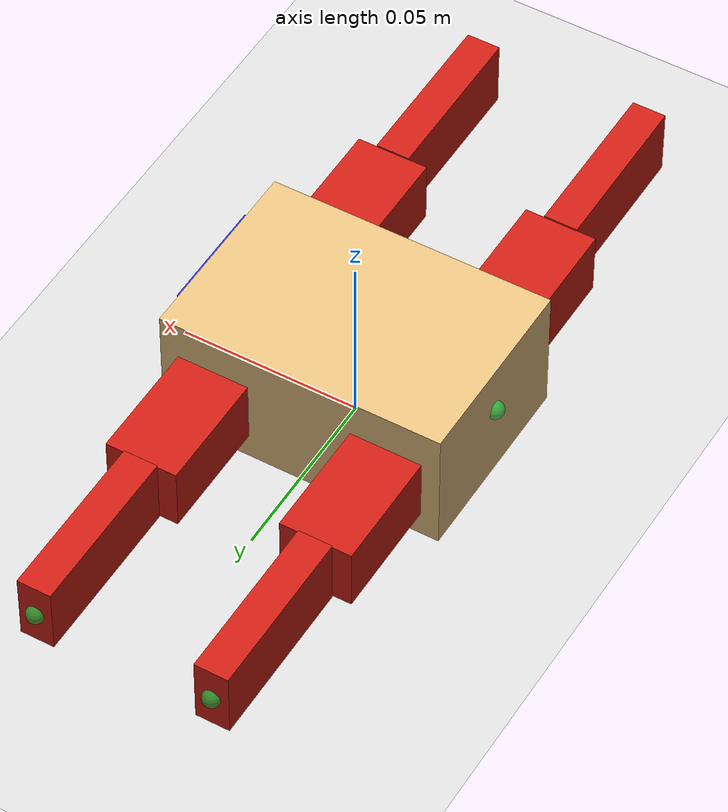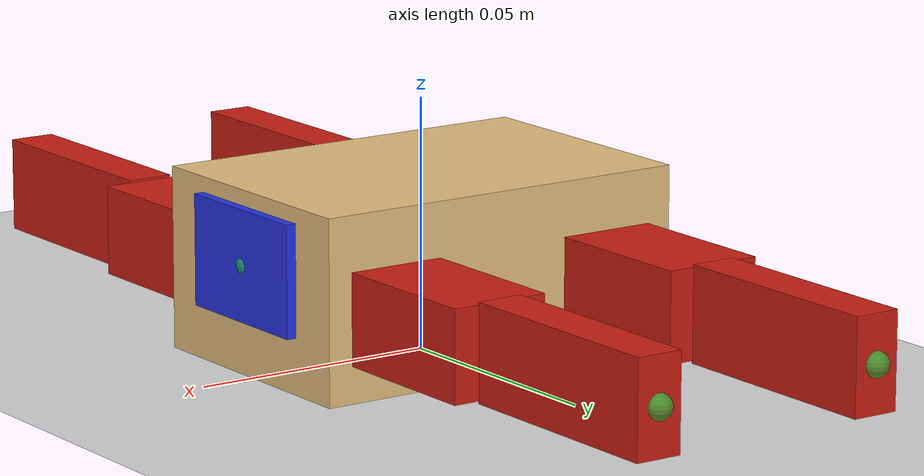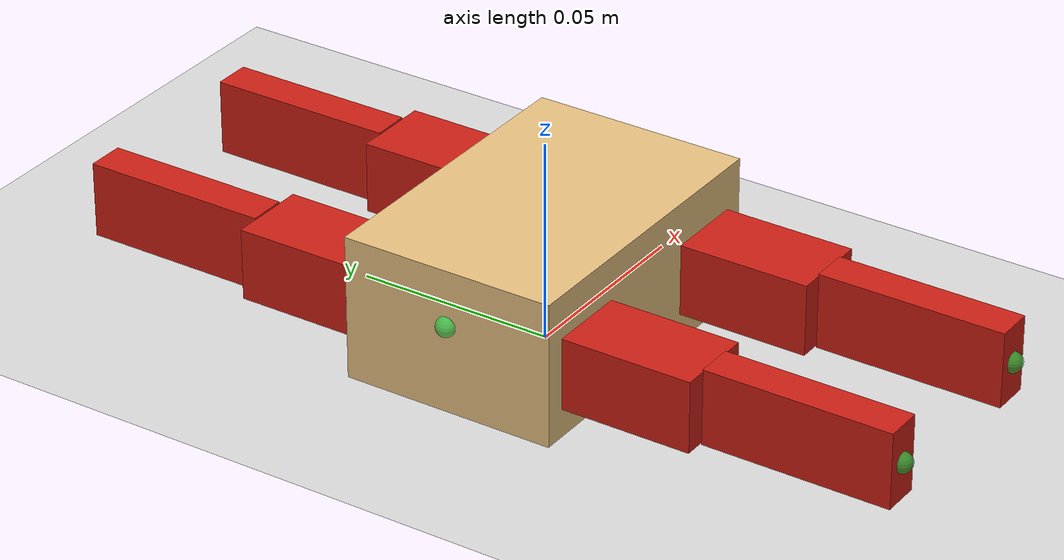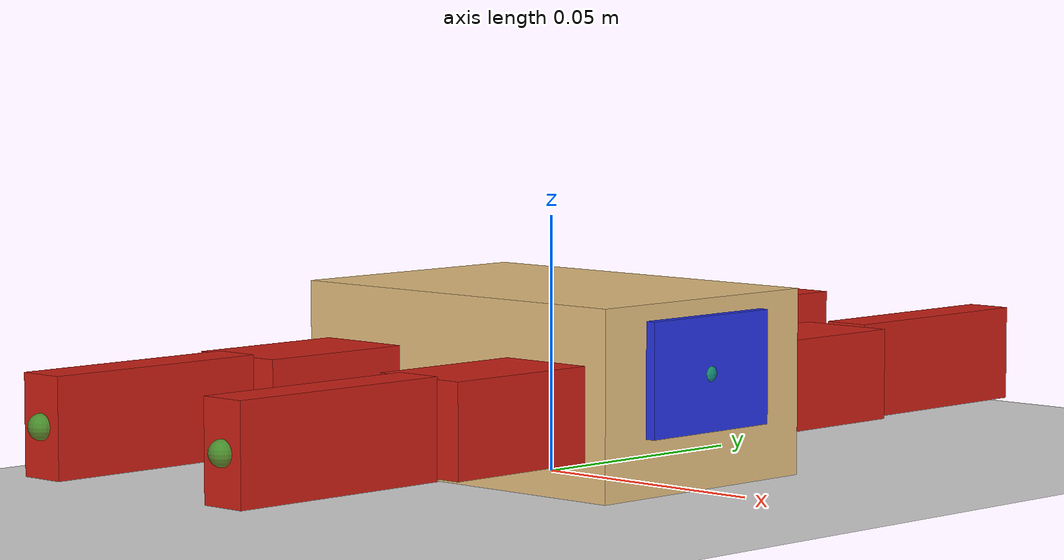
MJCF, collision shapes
<?xml version="1.0" encoding="utf-8"?>
<!-- GENERATED from manifest/robot.yaml by sim/build_mjcf.py — do not edit by hand.
     Kinematics/dimensions measured from upstream v117/v121 STLs; masses estimated. -->
<mujoco model="sesame">
  <option timestep="0.002"/>
  <compiler angle="radian" autolimits="true" meshdir="../assets/mesh"/>
  <default>
    <geom friction="0.9 0.005 0.0001" condim="3"/>
    <site size="0.0025" rgba="0.1 0.9 0.3 0.6"/>
  </default>
  <asset>
    <mesh name="torso_frame" file="torso_frame.stl"/>
    <mesh name="torso_bottom" file="torso_bottom.stl"/>
    <mesh name="torso_top" file="torso_top.stl"/>
    <mesh name="front_left_upper" file="front_left_upper.stl"/>
    <mesh name="front_left_lower" file="front_left_lower.stl"/>
    <mesh name="front_right_upper" file="front_right_upper.stl"/>
    <mesh name="front_right_lower" file="front_right_lower.stl"/>
    <mesh name="back_left_upper" file="back_left_upper.stl"/>
    <mesh name="back_left_lower" file="back_left_lower.stl"/>
    <mesh name="back_right_upper" file="back_right_upper.stl"/>
    <mesh name="back_right_lower" file="back_right_lower.stl"/>
  </asset>
  <worldbody>
    <light pos="0 0 1.5" dir="0 0 -1"/>
    <geom name="floor" type="plane" size="2 2 0.05" rgba="0.85 0.85 0.85 1"/>
    <body name="torso" pos="0 0 0.0185">
      <freejoint name="root"/>
      <geom name="torso_geom" type="box" size="0.0396 0.0271 0.0181"
            mass="0.19" group="3" rgba="0.9 0.75 0.5 1"/>
      <geom name="torso_frame_visual" type="mesh" mesh="torso_frame" mass="0"
            group="2" contype="0" conaffinity="0" rgba="0.92 0.88 0.80 1"/>
      <geom name="torso_bottom_visual" type="mesh" mesh="torso_bottom" mass="0"
            group="2" contype="0" conaffinity="0" rgba="0.92 0.88 0.80 1"/>
      <geom name="torso_top_visual" type="mesh" mesh="torso_top" mass="0"
            group="2" contype="0" conaffinity="0" rgba="0.92 0.88 0.80 1"/>
      <geom name="face_geom" type="box" size="0.002 0.016 0.011"
            pos="0.0396 0 0.004" mass="0.001"
            contype="0" conaffinity="0" rgba="0.15 0.2 0.9 1"/>
      <site name="torso_center" pos="0 0 0"/>
      <site name="face" pos="0.0396 0 0.004"/>
      <site name="rear" pos="-0.0396 0 0.004"/>
      <body name="front_right_upper" pos="0.0245 -0.0230 -0.0018">
        <joint name="R1" type="hinge" axis="0 0 1"
               range="-0.785398 1.570796" damping="0.01"/>
        <site name="front_right_hip" pos="0 0 0"/>
        <geom name="front_right_upper_geom" type="box" mass="0.019" group="3"
              pos="0 -0.0185 0"
              size="0.01 0.0185 0.009" rgba="0.80 0.12 0.08 1"/>
        <geom name="front_right_upper_visual" type="mesh" mesh="front_right_upper"
              mass="0" group="2" contype="0" conaffinity="0" rgba="0.80 0.12 0.08 1"/>
        <body name="front_right_lower" pos="0 -0.0369 0">
          <joint name="R3" type="hinge" axis="1 0 0"
                 range="-1.570796 1.570796" damping="0.01"/>
          <site name="front_right_knee" pos="0 0 0"/>
          <site name="front_right_paw" pos="0 -0.0470 0"/>
          <geom name="front_right_lower_geom" type="box" mass="0.005" group="3"
                pos="0 -0.0235 0"
                size="0.0047 0.0235 0.0095" rgba="0.80 0.12 0.08 1"/>
          <geom name="front_right_lower_visual" type="mesh" mesh="front_right_lower"
                mass="0" group="2" contype="0" conaffinity="0" rgba="0.80 0.12 0.08 1"/>
        </body>
      </body>
      <body name="back_right_upper" pos="-0.0245 -0.0230 -0.0018">
        <joint name="R2" type="hinge" axis="0 0 -1"
               range="-0.785398 1.570796" damping="0.01"/>
        <site name="back_right_hip" pos="0 0 0"/>
        <geom name="back_right_upper_geom" type="box" mass="0.019" group="3"
              pos="0 -0.0185 0"
              size="0.01 0.0185 0.009" rgba="0.80 0.12 0.08 1"/>
        <geom name="back_right_upper_visual" type="mesh" mesh="back_right_upper"
              mass="0" group="2" contype="0" conaffinity="0" rgba="0.80 0.12 0.08 1"/>
        <body name="back_right_lower" pos="0 -0.0369 0">
          <joint name="R4" type="hinge" axis="1 0 0"
                 range="-1.570796 1.570796" damping="0.01"/>
          <site name="back_right_knee" pos="0 0 0"/>
          <site name="back_right_paw" pos="0 -0.0470 0"/>
          <geom name="back_right_lower_geom" type="box" mass="0.005" group="3"
                pos="0 -0.0235 0"
                size="0.0047 0.0235 0.0095" rgba="0.80 0.12 0.08 1"/>
          <geom name="back_right_lower_visual" type="mesh" mesh="back_right_lower"
                mass="0" group="2" contype="0" conaffinity="0" rgba="0.80 0.12 0.08 1"/>
        </body>
      </body>
      <body name="front_left_upper" pos="0.0245 0.0230 -0.0018">
        <joint name="L1" type="hinge" axis="0 0 -1"
               range="-0.785398 1.570796" damping="0.01"/>
        <site name="front_left_hip" pos="0 0 0"/>
        <geom name="front_left_upper_geom" type="box" mass="0.019" group="3"
              pos="0 0.0185 0"
              size="0.01 0.0185 0.009" rgba="0.80 0.12 0.08 1"/>
        <geom name="front_left_upper_visual" type="mesh" mesh="front_left_upper"
              mass="0" group="2" contype="0" conaffinity="0" rgba="0.80 0.12 0.08 1"/>
        <body name="front_left_lower" pos="0 0.0369 0">
          <joint name="L3" type="hinge" axis="-1 0 0"
                 range="-1.570796 1.570796" damping="0.01"/>
          <site name="front_left_knee" pos="0 0 0"/>
          <site name="front_left_paw" pos="0 0.0470 0"/>
          <geom name="front_left_lower_geom" type="box" mass="0.005" group="3"
                pos="0 0.0235 0"
                size="0.0047 0.0235 0.0095" rgba="0.80 0.12 0.08 1"/>
          <geom name="front_left_lower_visual" type="mesh" mesh="front_left_lower"
                mass="0" group="2" contype="0" conaffinity="0" rgba="0.80 0.12 0.08 1"/>
        </body>
      </body>
      <body name="back_left_upper" pos="-0.0245 0.0230 -0.0018">
        <joint name="L2" type="hinge" axis="0 0 1"
               range="-0.785398 1.570796" damping="0.01"/>
        <site name="back_left_hip" pos="0 0 0"/>
        <geom name="back_left_upper_geom" type="box" mass="0.019" group="3"
              pos="0 0.0185 0"
              size="0.01 0.0185 0.009" rgba="0.80 0.12 0.08 1"/>
        <geom name="back_left_upper_visual" type="mesh" mesh="back_left_upper"
              mass="0" group="2" contype="0" conaffinity="0" rgba="0.80 0.12 0.08 1"/>
        <body name="back_left_lower" pos="0 0.0369 0">
          <joint name="L4" type="hinge" axis="-1 0 0"
                 range="-1.570796 1.570796" damping="0.01"/>
          <site name="back_left_knee" pos="0 0 0"/>
          <site name="back_left_paw" pos="0 0.0470 0"/>
          <geom name="back_left_lower_geom" type="box" mass="0.005" group="3"
                pos="0 0.0235 0"
                size="0.0047 0.0235 0.0095" rgba="0.80 0.12 0.08 1"/>
          <geom name="back_left_lower_visual" type="mesh" mesh="back_left_lower"
                mass="0" group="2" contype="0" conaffinity="0" rgba="0.80 0.12 0.08 1"/>
        </body>
      </body>
    </body>
  </worldbody>
  <actuator>
    <position name="R1" joint="R1" kp="0.6"
              forcerange="-0.176 0.176"
              ctrlrange="-0.785398 1.570796"/>
    <position name="R2" joint="R2" kp="0.6"
              forcerange="-0.176 0.176"
              ctrlrange="-0.785398 1.570796"/>
    <position name="L1" joint="L1" kp="0.6"
              forcerange="-0.176 0.176"
              ctrlrange="-0.785398 1.570796"/>
    <position name="L2" joint="L2" kp="0.6"
              forcerange="-0.176 0.176"
              ctrlrange="-0.785398 1.570796"/>
    <position name="R4" joint="R4" kp="0.6"
              forcerange="-0.176 0.176"
              ctrlrange="-1.570796 1.570796"/>
    <position name="R3" joint="R3" kp="0.6"
              forcerange="-0.176 0.176"
              ctrlrange="-1.570796 1.570796"/>
    <position name="L3" joint="L3" kp="0.6"
              forcerange="-0.176 0.176"
              ctrlrange="-1.570796 1.570796"/>
    <position name="L4" joint="L4" kp="0.6"
              forcerange="-0.176 0.176"
              ctrlrange="-1.570796 1.570796"/>
  </actuator>
</mujoco>
